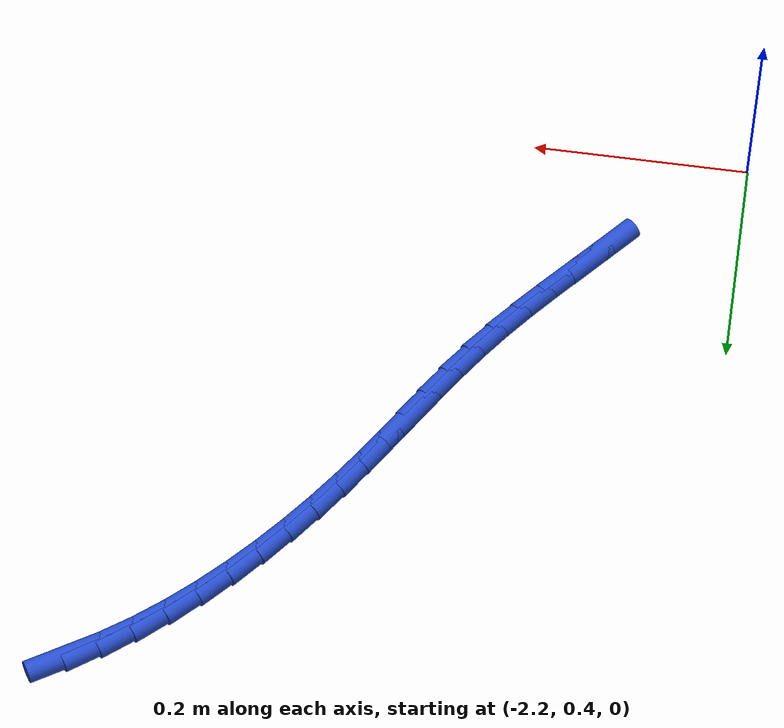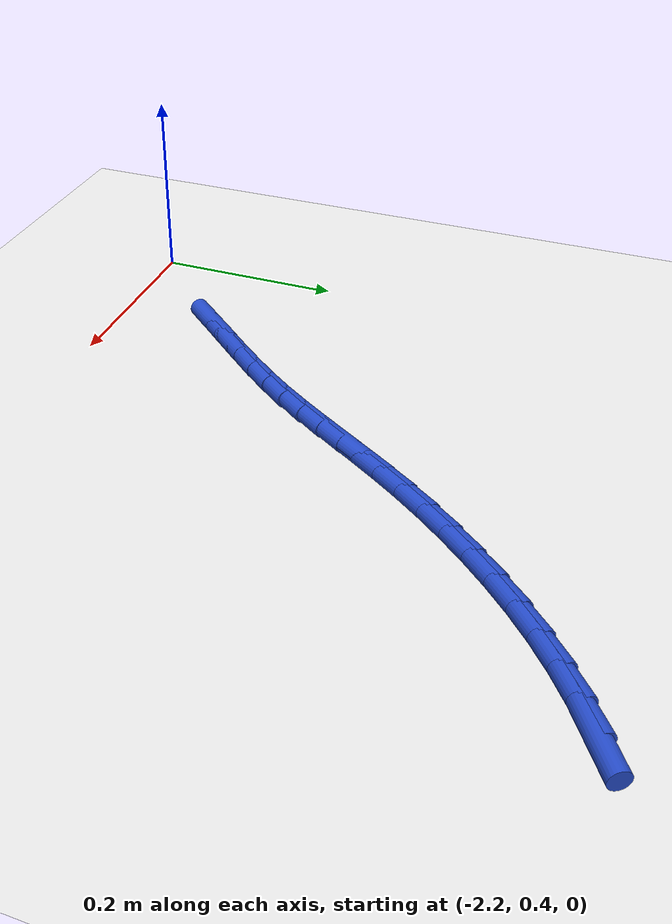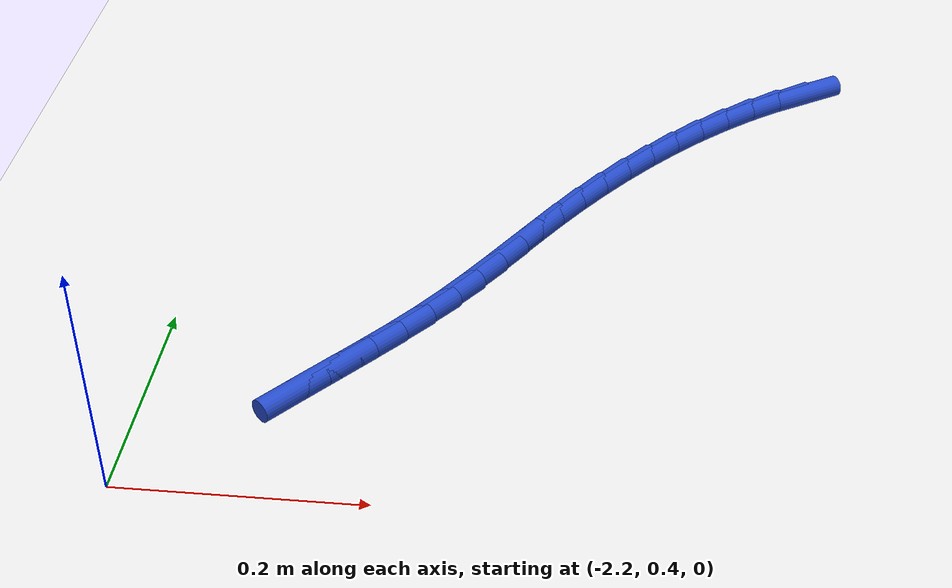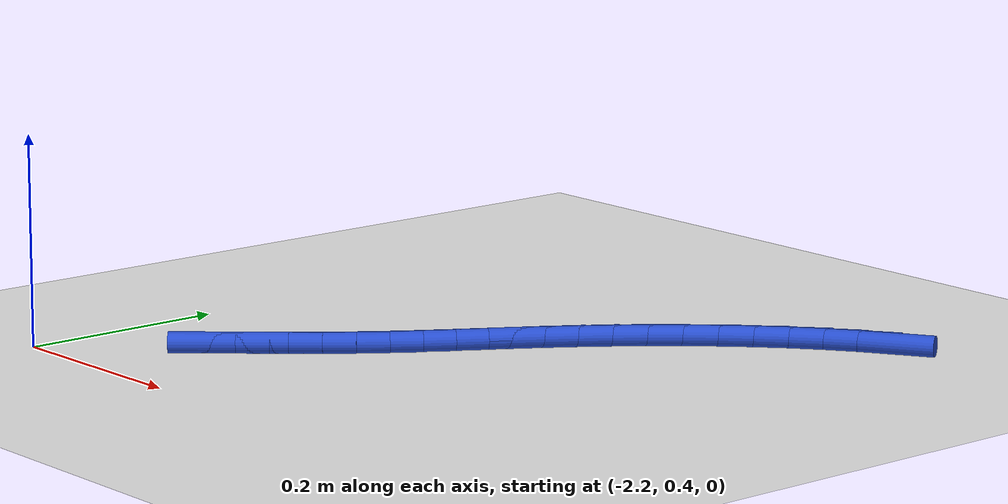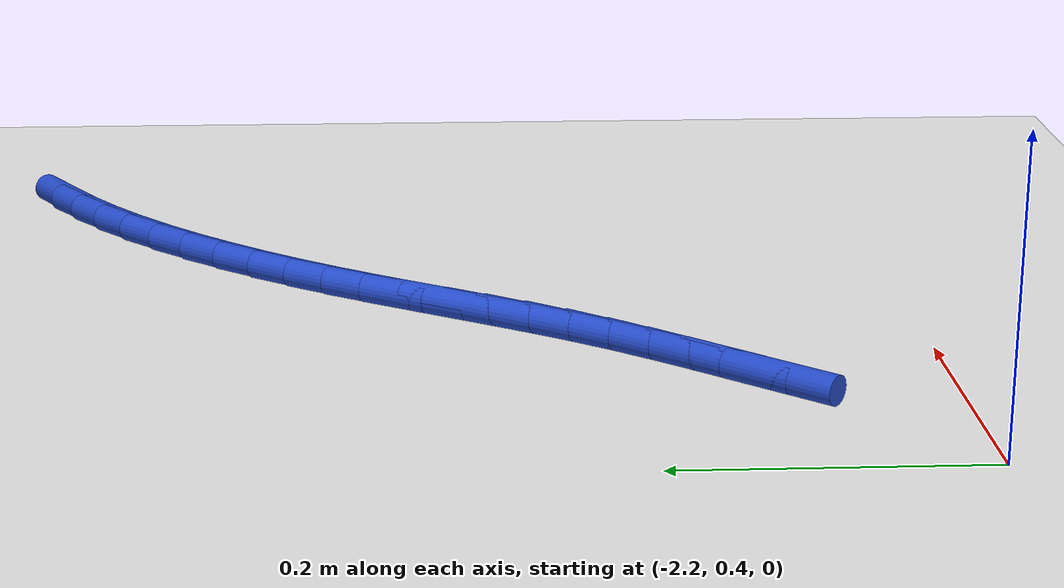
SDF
<sdf version="1.6">
 <world name="default">
  <model name="ground_plane">
   <static>1</static>
   <link name="link">
    <collision name="collision">
     <geometry><plane><normal>0 0 1</normal><size>100 100</size></plane></geometry>
     <surface><friction><ode><mu>100</mu><mu2>50</mu2></ode></friction></surface>
    </collision>
    <visual name="visual">
     <cast_shadows>0</cast_shadows>
     <geometry><plane><normal>0 0 1</normal><size>100 100</size></plane></geometry>
     <material>
      <script><uri>file://media/materials/scripts/gazebo.material</uri><name>Gazebo/WhiteGlow</name></script>
     </material>
    </visual>
   </link>
  </model>
  <model name="line">
   <link name="link_80">
    <pose>-1.6686102701080767 0.9882238472402233 0.01 0 1.57 0.5593547596269517</pose>
    <collision name="collision">
     <geometry><cylinder><radius>0.01</radius><length>0.08</length></cylinder></geometry>
    </collision>
    <visual name="visual">
     <material>
      <script><name>Gazebo/Blue</name><uri>file://media/materials/scripts/gazebo.material</uri></script>
     </material>
     <geometry><cylinder><radius>0.01</radius><length>0.08</length></cylinder></geometry>
    </visual>
   </link>
   <link name="link_81">
    <pose>-1.6953652456390085 0.9714738670867533 0.01 0 1.57 0.6259108591690282</pose>
    <collision name="collision">
     <geometry><cylinder><radius>0.01</radius><length>0.08</length></cylinder></geometry>
    </collision>
    <visual name="visual">
     <material>
      <script><name>Gazebo/Blue</name><uri>file://media/materials/scripts/gazebo.material</uri></script>
     </material>
     <geometry><cylinder><radius>0.01</radius><length>0.08</length></cylinder></geometry>
    </visual>
   </link>
   <link name="link_82">
    <pose>-1.721333528656855 0.9527021652587092 0.01 0 1.57 0.685500506111967</pose>
    <collision name="collision">
     <geometry><cylinder><radius>0.01</radius><length>0.08</length></cylinder></geometry>
    </collision>
    <visual name="visual">
     <material>
      <script><name>Gazebo/Blue</name><uri>file://media/materials/scripts/gazebo.material</uri></script>
     </material>
     <geometry><cylinder><radius>0.01</radius><length>0.08</length></cylinder></geometry>
    </visual>
   </link>
   <link name="link_83">
    <pose>-1.7464594588135647 0.9321541900221808 0.01 0 1.57 0.7390209709123358</pose>
    <collision name="collision">
     <geometry><cylinder><radius>0.01</radius><length>0.08</length></cylinder></geometry>
    </collision>
    <visual name="visual">
     <material>
      <script><name>Gazebo/Blue</name><uri>file://media/materials/scripts/gazebo.material</uri></script>
     </material>
     <geometry><cylinder><radius>0.01</radius><length>0.08</length></cylinder></geometry>
    </visual>
   </link>
   <link name="link_84">
    <pose>-1.770687375761084 0.9100753896432576 0.01 0 1.57 0.7873264824150127</pose>
    <collision name="collision">
     <geometry><cylinder><radius>0.01</radius><length>0.08</length></cylinder></geometry>
    </collision>
    <visual name="visual">
     <material>
      <script><name>Gazebo/Blue</name><uri>file://media/materials/scripts/gazebo.material</uri></script>
     </material>
     <geometry><cylinder><radius>0.01</radius><length>0.08</length></cylinder></geometry>
    </visual>
   </link>
   <link name="link_85">
    <pose>-1.7939616191513617 0.8867112123880295 0.01 0 1.57 0.8312037163482231</pose>
    <collision name="collision">
     <geometry><cylinder><radius>0.01</radius><length>0.08</length></cylinder></geometry>
    </collision>
    <visual name="visual">
     <material>
      <script><name>Gazebo/Blue</name><uri>file://media/materials/scripts/gazebo.material</uri></script>
     </material>
     <geometry><cylinder><radius>0.01</radius><length>0.08</length></cylinder></geometry>
    </visual>
   </link>
   <link name="link_86">
    <pose>-1.8162265286363426 0.8623071065225858 0.01 0 1.57 0.871366785925687</pose>
    <collision name="collision">
     <geometry><cylinder><radius>0.01</radius><length>0.08</length></cylinder></geometry>
    </collision>
    <visual name="visual">
     <material>
      <script><name>Gazebo/Blue</name><uri>file://media/materials/scripts/gazebo.material</uri></script>
     </material>
     <geometry><cylinder><radius>0.01</radius><length>0.08</length></cylinder></geometry>
    </visual>
   </link>
   <link name="link_87">
    <pose>-1.8374264438679753 0.8371085203130164 0.01 0 1.57 0.9084637708616211</pose>
    <collision name="collision">
     <geometry><cylinder><radius>0.01</radius><length>0.08</length></cylinder></geometry>
    </collision>
    <visual name="visual">
     <material>
      <script><name>Gazebo/Blue</name><uri>file://media/materials/scripts/gazebo.material</uri></script>
     </material>
     <geometry><cylinder><radius>0.01</radius><length>0.08</length></cylinder></geometry>
    </visual>
   </link>
   <link name="link_88">
    <pose>-1.8575057044982073 0.8113609020254112 0.01 0 1.57 0.9430901009553629</pose>
    <collision name="collision">
     <geometry><cylinder><radius>0.01</radius><length>0.08</length></cylinder></geometry>
    </collision>
    <visual name="visual">
     <material>
      <script><name>Gazebo/Blue</name><uri>file://media/materials/scripts/gazebo.material</uri></script>
     </material>
     <geometry><cylinder><radius>0.01</radius><length>0.08</length></cylinder></geometry>
    </visual>
   </link>
   <link name="link_89">
    <pose>-1.8764086501789858 0.7853096999258592 0.01 0 1.57 0.9752735458205517</pose>
    <collision name="collision">
     <geometry><cylinder><radius>0.01</radius><length>0.08</length></cylinder></geometry>
    </collision>
    <visual name="visual">
     <material>
      <script><name>Gazebo/Blue</name><uri>file://media/materials/scripts/gazebo.material</uri></script>
     </material>
     <geometry><cylinder><radius>0.01</radius><length>0.08</length></cylinder></geometry>
    </visual>
   </link>
   <link name="link_90">
    <pose>-1.8941063648753549 0.7591908534386157 0.01 0 1.57 0.9996408746786358</pose>
    <collision name="collision">
     <geometry><cylinder><radius>0.01</radius><length>0.08</length></cylinder></geometry>
    </collision>
    <visual name="visual">
     <material>
      <script><name>Gazebo/Blue</name><uri>file://media/materials/scripts/gazebo.material</uri></script>
     </material>
     <geometry><cylinder><radius>0.01</radius><length>0.08</length></cylinder></geometry>
    </visual>
   </link>
   <link name="link_91">
    <pose>-1.9108450426645145 0.733142487602716 0.01 0 1.57 1.0121450733190749</pose>
    <collision name="collision">
     <geometry><cylinder><radius>0.01</radius><length>0.08</length></cylinder></geometry>
    </collision>
    <visual name="visual">
     <material>
      <script><name>Gazebo/Blue</name><uri>file://media/materials/scripts/gazebo.material</uri></script>
     </material>
     <geometry><cylinder><radius>0.01</radius><length>0.08</length></cylinder></geometry>
    </visual>
   </link>
   <link name="link_92">
    <pose>-1.9270327294169767 0.7072451816493176 0.01 0 1.57 1.0120481586884666</pose>
    <collision name="collision">
     <geometry><cylinder><radius>0.01</radius><length>0.08</length></cylinder></geometry>
    </collision>
    <visual name="visual">
     <material>
      <script><name>Gazebo/Blue</name><uri>file://media/materials/scripts/gazebo.material</uri></script>
     </material>
     <geometry><cylinder><radius>0.01</radius><length>0.08</length></cylinder></geometry>
    </visual>
   </link>
   <link name="link_93">
    <pose>-1.9430795455995613 0.6815787771945145 0.01 0 1.57 0.9990125289236291</pose>
    <collision name="collision">
     <geometry><cylinder><radius>0.01</radius><length>0.08</length></cylinder></geometry>
    </collision>
    <visual name="visual">
     <material>
      <script><name>Gazebo/Blue</name><uri>file://media/materials/scripts/gazebo.material</uri></script>
     </material>
     <geometry><cylinder><radius>0.01</radius><length>0.08</length></cylinder></geometry>
    </visual>
   </link>
   <link name="link_94">
    <pose>-1.95939561167909 0.6562231158544028 0.01 0 1.57 0.9730943863746861</pose>
    <collision name="collision">
     <geometry><cylinder><radius>0.01</radius><length>0.08</length></cylinder></geometry>
    </collision>
    <visual name="visual">
     <material>
      <script><name>Gazebo/Blue</name><uri>file://media/materials/scripts/gazebo.material</uri></script>
     </material>
     <geometry><cylinder><radius>0.01</radius><length>0.08</length></cylinder></geometry>
    </visual>
   </link>
   <link name="link_95">
    <pose>-1.9763910481223845 0.6312580392450775 0.01 0 1.57 0.9351824728714441</pose>
    <collision name="collision">
     <geometry><cylinder><radius>0.01</radius><length>0.08</length></cylinder></geometry>
    </collision>
    <visual name="visual">
     <material>
      <script><name>Gazebo/Blue</name><uri>file://media/materials/scripts/gazebo.material</uri></script>
     </material>
     <geometry><cylinder><radius>0.01</radius><length>0.08</length></cylinder></geometry>
    </visual>
   </link>
   <link name="link_96">
    <pose>-1.9944643250002818 0.6067601517922872 0.01 0 1.57 0.896744221785471</pose>
    <collision name="collision">
     <geometry><cylinder><radius>0.01</radius><length>0.08</length></cylinder></geometry>
    </collision>
    <visual name="visual">
     <material>
      <script><name>Gazebo/Blue</name><uri>file://media/materials/scripts/gazebo.material</uri></script>
     </material>
     <geometry><cylinder><radius>0.01</radius><length>0.08</length></cylinder></geometry>
    </visual>
   </link>
   <link name="link_97">
    <pose>-2.0136756418443325 0.5827120657411304 0.01 0 1.57 0.8696599196999939</pose>
    <collision name="collision">
     <geometry><cylinder><radius>0.01</radius><length>0.08</length></cylinder></geometry>
    </collision>
    <visual name="visual">
     <material>
      <script><name>Gazebo/Blue</name><uri>file://media/materials/scripts/gazebo.material</uri></script>
     </material>
     <geometry><cylinder><radius>0.01</radius><length>0.08</length></cylinder></geometry>
    </visual>
   </link>
   <link name="link_98">
    <pose>-2.033702533948146 0.5589900658798205 0.01 0 1.57 0.8540223006231086</pose>
    <collision name="collision">
     <geometry><cylinder><radius>0.01</radius><length>0.08</length></cylinder></geometry>
    </collision>
    <visual name="visual">
     <material>
      <script><name>Gazebo/Blue</name><uri>file://media/materials/scripts/gazebo.material</uri></script>
     </material>
     <geometry><cylinder><radius>0.01</radius><length>0.08</length></cylinder></geometry>
    </visual>
   </link>
   <link name="link_99">
    <pose>-2.0542019651257952 0.5354647209852825 0.01 0 1.57 0.8494830285835682</pose>
    <collision name="collision">
     <geometry><cylinder><radius>0.01</radius><length>0.08</length></cylinder></geometry>
    </collision>
    <visual name="visual">
     <material>
      <script><name>Gazebo/Blue</name><uri>file://media/materials/scripts/gazebo.material</uri></script>
     </material>
     <geometry><cylinder><radius>0.01</radius><length>0.08</length></cylinder></geometry>
    </visual>
   </link>
   <link name="link_100">
    <pose>-2.0748308991913516 0.5120065998344415 0.01 0 1.57 0.8559506373200672</pose>
    <collision name="collision">
     <geometry><cylinder><radius>0.01</radius><length>0.08</length></cylinder></geometry>
    </collision>
    <visual name="visual">
     <material>
      <script><name>Gazebo/Blue</name><uri>file://media/materials/scripts/gazebo.material</uri></script>
     </material>
     <geometry><cylinder><radius>0.01</radius><length>0.08</length></cylinder></geometry>
    </visual>
   </link>
  </model>
 </world>
</sdf>
